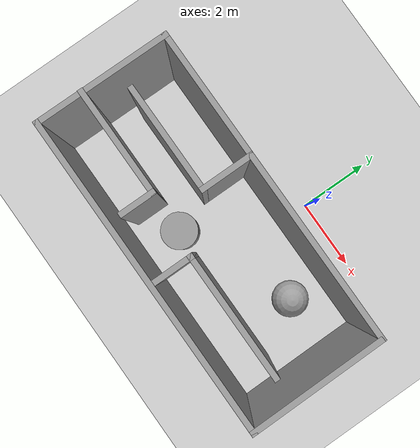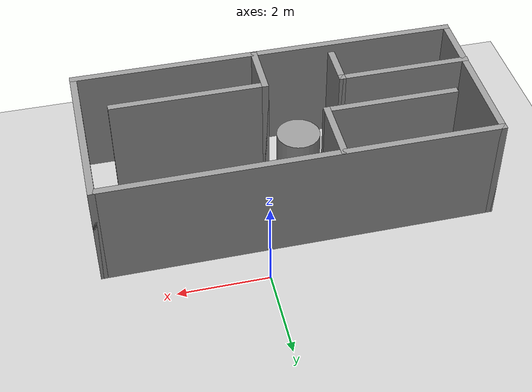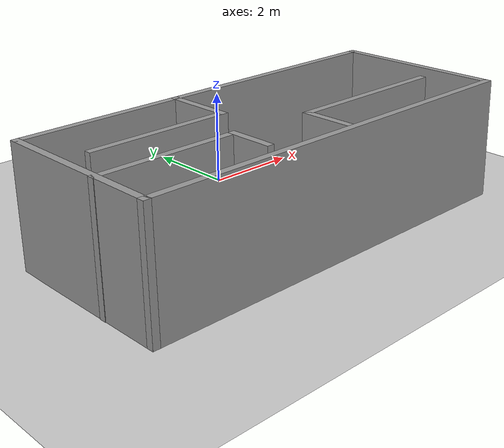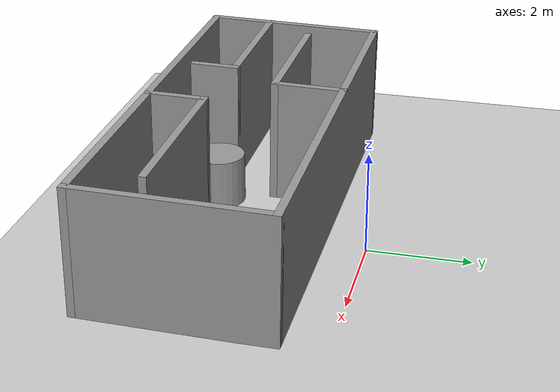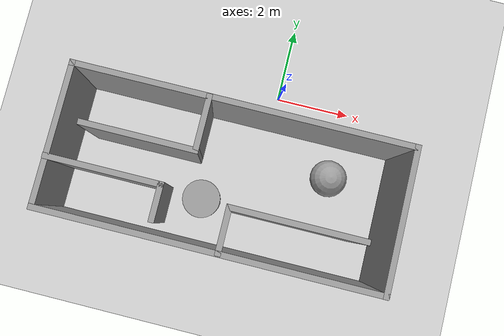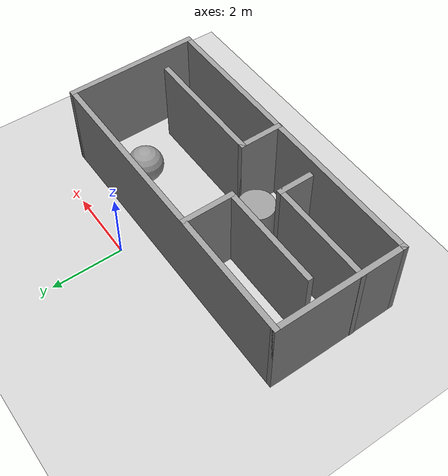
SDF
<sdf version="1.7">
 <world name="default">
  <light name="sun" type="directional">
   <pose>0 0 10 0 -0 0</pose>
   <diffuse>0.8 0.8 0.8 1</diffuse>
   <specular>0.2 0.2 0.2 1</specular>
   <attenuation>
    <range>1000</range>
    <constant>0.9</constant>
    <linear>0.01</linear>
    <quadratic>0.001</quadratic>
   </attenuation>
   <direction>-0.5 0.1 -0.9</direction>
   <spot><inner_angle>0</inner_angle><outer_angle>0</outer_angle><falloff>0</falloff></spot>
  </light>
  <model name="ground_plane">
   <static>1</static>
   <link name="link">
    <collision name="collision">
     <geometry><plane><normal>0 0 1</normal><size>100 100</size></plane></geometry>
     <surface><friction><ode><mu>100</mu><mu2>50</mu2></ode></friction></surface>
    </collision>
    <visual name="visual">
     <cast_shadows>0</cast_shadows>
     <geometry><plane><normal>0 0 1</normal><size>100 100</size></plane></geometry>
     <material>
      <script><uri>file://media/materials/scripts/gazebo.material</uri><name>Gazebo/Grey</name></script>
     </material>
    </visual>
   </link>
  </model>
  <gravity>0 0 -9.8</gravity>
  <magnetic_field>6e-06 2.3e-05 -4.2e-05</magnetic_field>
  <atmosphere type="adiabatic"/>
  <physics type="ode">
   <max_step_size>0.001</max_step_size>
   <real_time_factor>1</real_time_factor>
   <real_time_update_rate>1000</real_time_update_rate>
  </physics>
  <scene><ambient>0.4 0.4 0.4 1</ambient><background>0.7 0.7 0.7 1</background><shadows>1</shadows></scene>
  <audio><device>default</device></audio>
  <spherical_coordinates>
   <surface_model>EARTH_WGS84</surface_model>
   <latitude_deg>0</latitude_deg>
   <longitude_deg>0</longitude_deg>
   <elevation>0</elevation>
   <heading_deg>0</heading_deg>
  </spherical_coordinates>
  <model name="room">
   <pose>-0.895889 -2.1979 0 -0.015518 0 0</pose>
   <link name="Wall_0">
    <collision name="Wall_0_Collision">
     <geometry><box><size>8.75 0.15 2.5</size></box></geometry>
     <pose>0 0 1.25 0 -0 0</pose>
    </collision>
    <visual name="Wall_0_Visual">
     <pose>0 0 1.25 0 -0 0</pose>
     <geometry><box><size>8.75 0.15 2.5</size></box></geometry>
     <material>
      <script><uri>file://media/materials/scripts/gazebo.material</uri><name>Gazebo/Grey</name></script>
      <ambient>1 1 1 1</ambient>
     </material>
     <meta><layer>0</layer></meta>
    </visual>
    <pose>0.005 1.3225 0 0 -0 0</pose>
   </link>
   <link name="Wall_1">
    <collision name="Wall_1_Collision">
     <geometry><box><size>3.75 0.15 2.5</size></box></geometry>
     <pose>0 0 1.25 0 -0 0</pose>
    </collision>
    <visual name="Wall_1_Visual">
     <pose>0 0 1.25 0 -0 0</pose>
     <geometry><box><size>3.75 0.15 2.5</size></box></geometry>
     <material>
      <script><uri>file://media/materials/scripts/gazebo.material</uri><name>Gazebo/Grey</name></script>
      <ambient>1 1 1 1</ambient>
     </material>
     <meta><layer>0</layer></meta>
    </visual>
    <pose>4.305 -0.4775 0 0 -0 -1.5708</pose>
   </link>
   <link name="Wall_11">
    <collision name="Wall_11_Collision">
     <geometry><box><size>1.25 0.15 2.5</size></box></geometry>
     <pose>0 0 1.25 0 -0 0</pose>
    </collision>
    <visual name="Wall_11_Visual">
     <pose>0 0 1.25 0 -0 0</pose>
     <geometry><box><size>1.25 0.15 2.5</size></box></geometry>
     <material>
      <script><uri>file://media/materials/scripts/gazebo.material</uri><name>Gazebo/Grey</name></script>
      <ambient>1 1 1 1</ambient>
     </material>
     <meta><layer>0</layer></meta>
    </visual>
    <pose>0.255 -1.7075 0 0 -0 1.5708</pose>
   </link>
   <link name="Wall_12">
    <collision name="Wall_12_Collision">
     <geometry><box><size>3.5 0.15 2.5</size></box></geometry>
     <pose>0 0 1.25 0 -0 0</pose>
    </collision>
    <visual name="Wall_12_Visual">
     <pose>0 0 1.25 0 -0 0</pose>
     <geometry><box><size>3.5 0.15 2.5</size></box></geometry>
     <material>
      <script><uri>file://media/materials/scripts/gazebo.material</uri><name>Gazebo/Grey</name></script>
      <ambient>1 1 1 1</ambient>
     </material>
     <meta><layer>0</layer></meta>
    </visual>
    <pose>1.93 -1.1575 0 0 -0 0</pose>
   </link>
   <link name="Wall_2">
    <collision name="Wall_2_Collision">
     <geometry><box><size>8.75 0.15 2.5</size></box></geometry>
     <pose>0 0 1.25 0 -0 0</pose>
    </collision>
    <visual name="Wall_2_Visual">
     <pose>0 0 1.25 0 -0 0</pose>
     <geometry><box><size>8.75 0.15 2.5</size></box></geometry>
     <material>
      <script><uri>file://media/materials/scripts/gazebo.material</uri><name>Gazebo/Grey</name></script>
      <ambient>1 1 1 1</ambient>
     </material>
     <meta><layer>0</layer></meta>
    </visual>
    <pose>0.005 -2.2775 0 0 -0 3.14159</pose>
   </link>
   <link name="Wall_3">
    <collision name="Wall_3_Collision">
     <geometry><box><size>3.75 0.15 2.5</size></box></geometry>
     <pose>0 0 1.25 0 -0 0</pose>
    </collision>
    <visual name="Wall_3_Visual">
     <pose>0 0 1.25 0 -0 0</pose>
     <geometry><box><size>3.75 0.15 2.5</size></box></geometry>
     <material>
      <script><uri>file://media/materials/scripts/gazebo.material</uri><name>Gazebo/Grey</name></script>
      <ambient>1 1 1 1</ambient>
     </material>
     <meta><layer>0</layer></meta>
    </visual>
    <pose>-4.295 -0.4775 0 0 -0 1.5708</pose>
   </link>
   <link name="Wall_5">
    <collision name="Wall_5_Collision">
     <geometry><box><size>1.5 0.15 2.5</size></box></geometry>
     <pose>0 0 1.25 0 -0 0</pose>
    </collision>
    <visual name="Wall_5_Visual">
     <pose>0 0 1.25 0 -0 0</pose>
     <geometry><box><size>1.5 0.15 2.5</size></box></geometry>
     <material>
      <script><uri>file://media/materials/scripts/gazebo.material</uri><name>Gazebo/Grey</name></script>
      <ambient>1 1 1 1</ambient>
     </material>
     <meta><layer>0</layer></meta>
    </visual>
    <pose>-0.855 0.6375 0 0 -0 -1.5708</pose>
   </link>
   <link name="Wall_6">
    <collision name="Wall_6_Collision">
     <geometry><box><size>3 0.15 2.5</size></box></geometry>
     <pose>0 0 1.25 0 -0 0</pose>
    </collision>
    <visual name="Wall_6_Visual">
     <pose>0 0 1.25 0 -0 0</pose>
     <geometry><box><size>3 0.15 2.5</size></box></geometry>
     <material>
      <script><uri>file://media/materials/scripts/gazebo.material</uri><name>Gazebo/Grey</name></script>
      <ambient>1 1 1 1</ambient>
     </material>
     <meta><layer>0</layer></meta>
    </visual>
    <pose>-2.28 -0.0375 0 0 -0 3.14159</pose>
   </link>
   <link name="Wall_8">
    <collision name="Wall_8_Collision">
     <geometry><box><size>3 0.15 2.5</size></box></geometry>
     <pose>0 0 1.25 0 -0 0</pose>
    </collision>
    <visual name="Wall_8_Visual">
     <pose>0 0 1.25 0 -0 0</pose>
     <geometry><box><size>3 0.15 2.5</size></box></geometry>
     <material>
      <script><uri>file://media/materials/scripts/gazebo.material</uri><name>Gazebo/Grey</name></script>
      <ambient>1 1 1 1</ambient>
     </material>
     <meta><layer>0</layer></meta>
    </visual>
    <pose>-2.88 -1.0275 0 0 -0 0</pose>
   </link>
   <link name="Wall_9">
    <collision name="Wall_9_Collision">
     <geometry><box><size>1 0.15 2.5</size></box></geometry>
     <pose>0 0 1.25 0 -0 0</pose>
    </collision>
    <visual name="Wall_9_Visual">
     <pose>0 0 1.25 0 -0 0</pose>
     <geometry><box><size>1 0.15 2.5</size></box></geometry>
     <material>
      <script><uri>file://media/materials/scripts/gazebo.material</uri><name>Gazebo/Grey</name></script>
      <ambient>1 1 1 1</ambient>
     </material>
     <meta><layer>0</layer></meta>
    </visual>
    <pose>-1.455 -1.4525 0 0 -0 -1.5708</pose>
   </link>
   <static>1</static>
  </model>
  <model name="unit_sphere">
   <pose>1.79581 -1.89909 0.5 0 -0 0</pose>
   <link name="link">
    <inertial>
     <mass>1</mass>
     <inertia><ixx>0.1</ixx><ixy>0</ixy><ixz>0</ixz><iyy>0.1</iyy><iyz>0</iyz><izz>0.1</izz></inertia>
    </inertial>
    <collision name="collision"><geometry><sphere><radius>0.5</radius></sphere></geometry></collision>
    <visual name="visual">
     <geometry><sphere><radius>0.5</radius></sphere></geometry>
     <material>
      <script><name>Gazebo/Grey</name><uri>file://media/materials/scripts/gazebo.material</uri></script>
     </material>
    </visual>
   </link>
  </model>
  <model name="unit_cylinder">
   <pose>-1.40168 -3.26727 0.499997 3e-06 4e-06 -0</pose>
   <link name="link">
    <inertial>
     <mass>1</mass>
     <inertia><ixx>0.145833</ixx><ixy>0</ixy><ixz>0</ixz><iyy>0.145833</iyy><iyz>0</iyz><izz>0.125</izz></inertia>
    </inertial>
    <collision name="collision">
     <geometry><cylinder><radius>0.5</radius><length>1</length></cylinder></geometry>
    </collision>
    <visual name="visual">
     <geometry><cylinder><radius>0.5</radius><length>1</length></cylinder></geometry>
     <material>
      <script><name>Gazebo/Grey</name><uri>file://media/materials/scripts/gazebo.material</uri></script>
     </material>
    </visual>
   </link>
  </model>
 </world>
</sdf>
